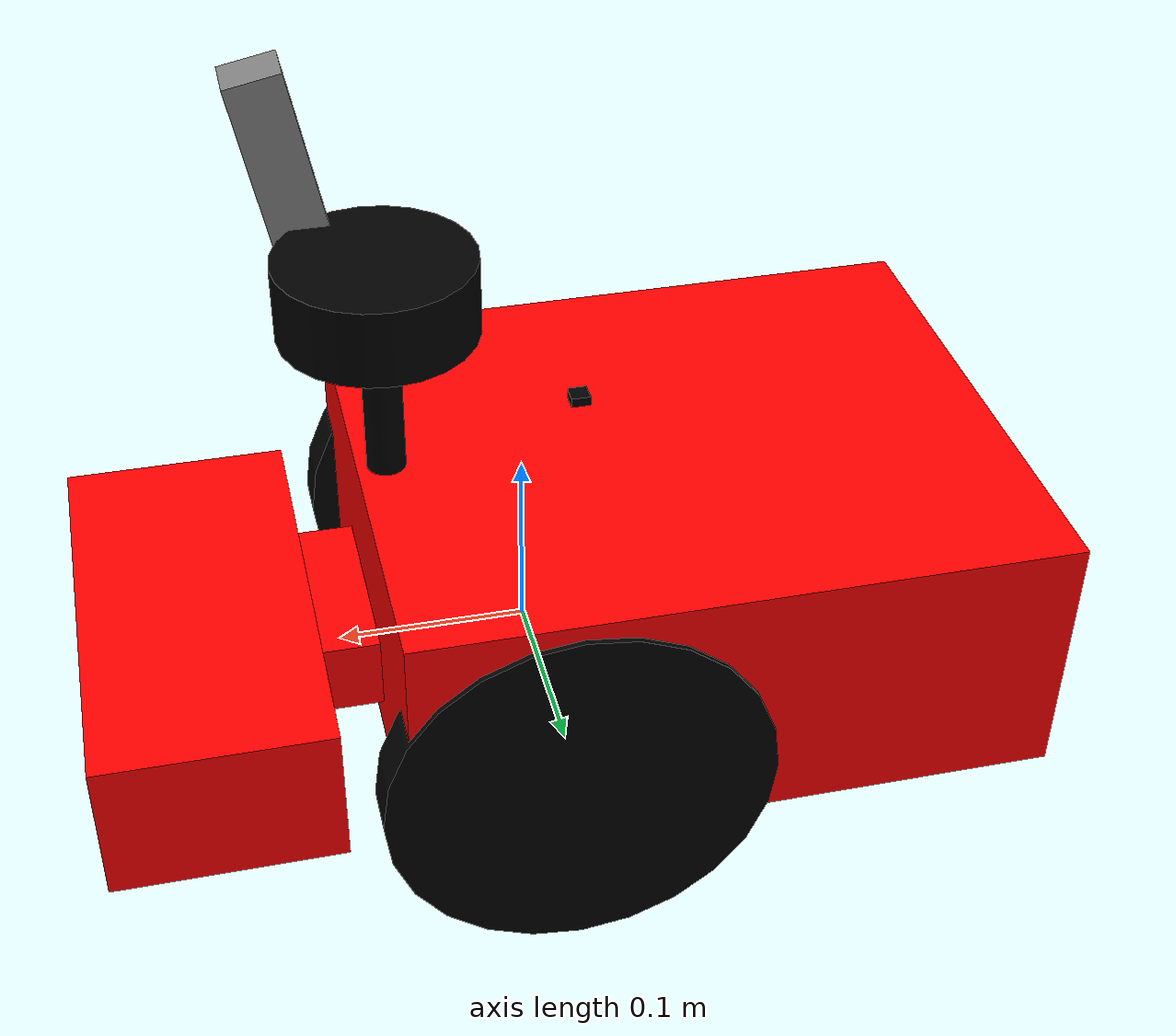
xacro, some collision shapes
<?xml version="1.0" ?>
<robot name='robot' xmlns:xacro="http://ros.org/wiki/xacro">

    <xacro:include filename="gazebo.urdf.xacro" />
    <xacro:include filename="lidar.urdf.xacro"/>
    <xacro:include filename="depth.urdf.xacro"/>
    <xacro:include filename="imu.urdf.xacro"/>

    <xacro:property name="chassis_length" value="0.335"/>
    <xacro:property name="chassis_width" value="0.28"/>
    <xacro:property name="chassis_height" value="0.138"/>
    <xacro:property name="wheel_radius" value="0.1"/>
    <xacro:property name="wheel_thickness" value="0.026"/>
    <xacro:property name="wheel_mass" value="0.2"/>
    <xacro:property name="wheel_offset_x" value="0.25"/>
    <xacro:property name="wheel_offset_y" value="0.13"/>
    <xacro:property name="wheel_offset_z" value="0.03"/>
    <xacro:property name="caster_wheel_radius" value="0.03"/>
    <xacro:property name="caster_wheel_mass" value="0.1"/>
    <xacro:property name="caster_wheel_offset_x" value="0.03"/>
    <xacro:property name="caster_wheel_offset_z" value="${wheel_offset_z - wheel_radius + caster_wheel_radius}"/>
    <xacro:property name="vacuum_length" value="0.12"/>
    <xacro:property name="vacuum_width" value="0.24"/>
    <xacro:property name="vacuum_height" value="0.08"/>
    <xacro:property name="vacuum_mass" value="0.5"/>
    <xacro:property name="mass" value="2.0"/>

    <material name="white">
        <color rgba="1 1 1 1" />
    </material>

    <material name="blue">
        <color rgba="0.2 0.2 1 1"/>
    </material>

    <material name="black">
        <color rgba="0 0 0 1"/>
    </material>

    <material name="red">
        <color rgba="1 0 0 1"/>
    </material>

    <link name="base_link">
    </link>

    <link name="base_footprint">
    </link>

    <joint name="base_footprint_joint" type="fixed">
        <parent link="base_link"/>
        <child link="base_footprint"/>
        <origin xyz="0 0 -0.138" rpy="0 0 0"/>
    </joint>

    <joint name="chassis_joint" type="fixed">
        <parent link="base_link"/>
        <child link="chassis"/>
        <origin xyz="${-wheel_offset_x} 0 ${-wheel_offset_z}"/>
    </joint>

    <link name='chassis'>
	    <inertial>
		<origin xyz="${chassis_length/2} 0 ${chassis_height/2}" rpy="0 0 0"/>
		<mass value="${mass}" />
		<inertia ixx="${(1/12) * mass * (chassis_width*chassis_width+chassis_height*chassis_height)}" ixy="0.0" ixz="0.0"
		         iyy="${(1/12) * mass * (chassis_length*chassis_length+chassis_height*chassis_height)}" iyz="0.0"
		         izz="${(1/12) * mass * (chassis_length*chassis_length+chassis_width*chassis_width)}" />
	    </inertial>
	    <visual>
		<origin xyz="${chassis_length/2} 0 ${chassis_height/2}"/>
		<geometry>
		    <box size="${chassis_length} ${chassis_width} ${chassis_height}"/>
		</geometry>
		<material name="red"/>
	    </visual>
	    <collision>
		<origin xyz="${chassis_length/2} 0 ${chassis_height/2}"/>
		<geometry>
		    <box size="${chassis_length} ${chassis_width} ${chassis_height}"/>
		</geometry>
	    </collision>
    </link>

    <gazebo reference="chassis">
        <material>Gazebo/Red</material>
    </gazebo>

    <joint name="connector_joint" type="fixed">
        <parent link="chassis"/>
        <child link="connector"/>
        <origin xyz="${chassis_length} 0 ${chassis_height/3}"/>
    </joint>

    <link name= "connector">
	<inertial>
	    <origin xyz="0.015 0 0" rpy="0 0 0"/>
	    <mass value="0.05" />
	    <inertia ixx="${(1/12) * 0.05 * (0.1*0.1+0.04*0.04)}" ixy="0.0" ixz="0.0"
		     iyy="${(1/12) * 0.05 * (0.03*0.03+0.04*0.04)}" iyz="0.0"
		     izz="${(1/12) * 0.05 * (0.03*0.03+ 0.01*0.01)}" />
	</inertial>
	    <visual>
		<origin xyz="0.015 0 0"/>
		<geometry>
		    <box size="0.03 0.1 0.04"/>
		</geometry>
		<material name="red"/>
	    </visual>
	    <collision>
		<origin xyz="0.015 0 0"/>
		<geometry>
		    <box size="0.03 0.1 0.04"/>
		</geometry>
	    </collision>
    </link>

    <gazebo reference="connector">
        <material>Gazebo/Red</material>
    </gazebo>

    <joint name="vacuum_joint" type="fixed">
        <parent link="connector"/>
        <child link="vacuum"/>
        <origin xyz="0.03 0 0.04"/>
    </joint>

    <link name= "vacuum">
	<inertial>
	    <origin xyz="${vacuum_length/2} 0 ${-vacuum_height*2/3}" rpy="0 0 0"/>
	    <mass value="${vacuum_mass}"/>
	    <inertia ixx="${(1/12)*vacuum_mass*(vacuum_width*vacuum_width+vacuum_height*vacuum_height)}" ixy="0.0" ixz="0.0"
		     iyy="${(1/12)*vacuum_mass*(vacuum_length*vacuum_length+vacuum_height*vacuum_height)}" iyz="0.0"
		     izz="${(1/12)*vacuum_mass*(vacuum_length*vacuum_length+vacuum_width*vacuum_width)}" />
	</inertial>
	    <visual>
		<origin xyz="${vacuum_length/2} 0 ${-vacuum_height*2/3}"/>
		<geometry>
		    <box size="${vacuum_length} ${vacuum_width} ${vacuum_height}"/>
		</geometry>
		<material name="red"/>
	    </visual>
	    <collision>
		<origin xyz="${vacuum_length/2} 0 ${-vacuum_height*2/3}"/>
		<geometry>
		    <box size="${vacuum_length} ${vacuum_width} ${vacuum_height}"/>
		</geometry>
	    </collision>
    </link>

    <gazebo reference="vacuum">
        <material>Gazebo/Red</material>
    </gazebo>

    <joint name="left_wheel_joint" type="continuous">
        <parent link="base_link"/>
        <child link="left_wheel"/>
        <origin xyz="0 ${wheel_offset_y} 0" rpy="-${pi/2} 0 0" />
        <axis xyz="0 0 1"/>
    </joint>

    <link name="left_wheel">
        <visual>
            <geometry>
                <cylinder radius="${wheel_radius}" length="${wheel_thickness}"/>
            </geometry>
            <material name="black"/>
        </visual>
        <collision>
            <geometry>
                <sphere radius="${wheel_radius}"/>
            </geometry>
        </collision>
        <inertial>
            <origin xyz="0 0 0" rpy="0 0 0"/>
            <mass value="${wheel_mass}" />
            <inertia ixx="${(1/12) * wheel_mass * (3*wheel_radius*wheel_radius + wheel_thickness*wheel_thickness)}" ixy="0.0" ixz="0.0"
                     iyy="${(1/12) * wheel_mass * (3*wheel_radius*wheel_radius + wheel_thickness*wheel_thickness)}" iyz="0.0"
                     izz="${(1/2) * wheel_mass * (wheel_radius*wheel_radius)}" />
        </inertial>
    </link>

    <gazebo reference="left_wheel">
        <material>Gazebo/Black</material>
    </gazebo>

    <joint name="right_wheel_joint" type="continuous">
        <parent link="base_link"/>
        <child link="right_wheel"/>
        <origin xyz="0 ${-wheel_offset_y} 0" rpy="${pi/2} 0 0" />
        <axis xyz="0 0 -1"/>
    </joint>

    <link name="right_wheel">
        <visual>
            <geometry>
                <cylinder radius="${wheel_radius}" length="${wheel_thickness}"/>
            </geometry>
            <material name="black"/>
        </visual>
        <collision>
            <geometry>
                <sphere radius="${wheel_radius}"/>
            </geometry>
        </collision>
        <inertial>
            <origin xyz="0 0 0" rpy="0 0 0"/>
            <mass value="${wheel_mass}" />
            <inertia ixx="${(1/12) * wheel_mass * (3*wheel_radius*wheel_radius + wheel_thickness*wheel_thickness)}" ixy="0.0" ixz="0.0"
                     iyy="${(1/12) * wheel_mass * (3*wheel_radius*wheel_radius + wheel_thickness*wheel_thickness)}" iyz="0.0"
                     izz="${(1/2) * wheel_mass * (wheel_radius*wheel_radius)}" />
        </inertial>
    </link>

    <gazebo reference="right_wheel">
        <material>Gazebo/Black</material>
    </gazebo>

    <joint name="caster_wheel_joint" type="fixed">
        <parent link="chassis"/>
        <child link="caster_wheel"/>
        <origin xyz="${caster_wheel_offset_x} 0 ${caster_wheel_offset_z}"/>
    </joint>

    <link name="caster_wheel">
        <visual>
            <geometry>
                <sphere radius="${caster_wheel_radius}"/>
            </geometry>
            <material name="black"/>
        </visual>
        <collision>
            <geometry>
                <sphere radius="${caster_wheel_radius}"/>
            </geometry>
        </collision>
        <inertial>
            <origin xyz="0 0 0" rpy="0 0 0"/>
            <mass value="${caster_wheel_mass}" />
            <inertia ixx="${(2/5) * caster_wheel_mass * (caster_wheel_radius*caster_wheel_radius)}" ixy="0.0" ixz="0.0"
                     iyy="${(2/5) * caster_wheel_mass * (caster_wheel_radius*caster_wheel_radius)}" iyz="0.0"
                     izz="${(2/5) * caster_wheel_mass * (caster_wheel_radius*caster_wheel_radius)}" />
        </inertial>
    </link>

    <gazebo reference="caster_wheel">
        <material>Gazebo/Black</material>
        <mu1 value="0.01"/>
        <mu2 value="0.01"/>
    </gazebo>

</robot>

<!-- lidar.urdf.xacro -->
<robot xmlns:xacro="http://www.ros.org/wiki/xacro">

    <joint name="laser_joint" type="fixed">
        <parent link="base_link"/>
        <child link="laser_frame"/>
        <origin xyz="0.1 0 0.212" rpy="0 0 0"/>
    </joint>

    <link name="laser_frame">
        <visual>
            <origin xyz="-0.03 0 0"/>
            <geometry>
                <cylinder radius="0.05" length="0.04"/>
            </geometry>
            <material name="black"/>
        </visual>
        <visual>
            <origin xyz="-0.03 0 -0.05"/>
            <geometry>
                <cylinder radius="0.01" length="0.1"/>
            </geometry>
            <material name="black"/>
        </visual>
        <collision>
            <geometry>
                <cylinder radius="0.05" length="0.04"/>
            </geometry>
        </collision>
        <inertial>
            <origin xyz="-0.03 0 0" rpy="0 0 -0.05"/>
            <mass value="0.1" />
            <inertia ixx="${(1/12) * 0.1 * (3*0.05*0.05 + 0.04*0.04)}" ixy="0.0" ixz="0.0"
                     iyy="${(1/12) * 0.1 * (3*0.05*0.05 + 0.04*0.04)}" iyz="0.0"
                     izz="${(1/2) * 0.1 * (0.05*0.05)}" />
        </inertial>
    </link>

    <gazebo reference="laser_frame">
        <material>Gazebo/Black</material>

        <sensor name='laser_sensor_frame' type='gpu_lidar'>"
            <gz_frame_id>robot/laser_frame</gz_frame_id>
            <pose> 0 0 0 0 0 0 </pose>
            <visualize>true</visualize>
            <always_on>true</always_on>
            <update_rate>10</update_rate>
            <ray>
                <scan>
                    <horizontal>
                        <samples>360</samples>
                        <min_angle>-3.14</min_angle>
                        <max_angle>3.14</max_angle>
                    </horizontal>
                </scan>
                <range>
                    <min>0.1</min>
                    <max>12</max>
                </range>
                <noise>
                    <type>gaussian</type>
                    <mean>0.0</mean>
                    <stddev>0.007</stddev>
                </noise>
            </ray>
        </sensor>
    </gazebo>
</robot>

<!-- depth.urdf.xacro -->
<robot xmlns:xacro="http://www.ros.org/wiki/xacro">

    <xacro:property name="M_PI" value="3.1415926535897931" />

    <joint name="depth_joint" type="fixed">
        <parent link="base_link"/>
        <child link="depth_frame"/>
        <origin xyz="0.1 0 0.25" rpy="0 0.2 0"/>
    </joint>

    <material name="aluminum">
      <color rgba="0.5 0.5 0.5 1"/>
    </material>

    <link name="depth_frame">
        <visual>
            <origin xyz="0.00465 -0.0475 0" rpy="${M_PI/2} 0 ${M_PI/2}"/>
            <geometry>
                <mesh filename="file://$(find rb_pkg)/urdf/d455.stl" scale="0.001 0.001 0.001"/>
                <!--box size="0.026 0.124 0.029"/-->
            </geometry>
            <material name="aluminum"/>
        </visual>
        <collision>
            <origin xyz="0.00465 -0.0475 0" rpy="${M_PI/2} 0 ${M_PI/2}"/>
            <geometry>
                <box size="0.026 0.124 0.029"/>
            </geometry>
        </collision>
        <inertial>
            <origin xyz="0 0 0" rpy="0 0 0"/>
            <mass value="0.116" />
            <inertia ixx="${(1/12) * 0.116 * (0.026*0.026+0.029*0.029)}" ixy="0.0" ixz="0.0"
                     iyy="${(1/12) * 0.116 * (0.124*0.124+0.029*0.029)}" iyz="0.0"
                     izz="${(1/12) * 0.116 * (0.124*0.124+0.026*0.026)}" />
        </inertial>
    </link>

    <gazebo reference="depth_frame">
        <sensor name='depth_sensor_frame' type='depth_camera'>"
            <gz_frame_id>robot/depth_frame</gz_frame_id>
            <pose> 0 0 0 0 0 0 </pose>
            <always_on>true</always_on>
            <update_rate>10</update_rate>
            <camera>
                <horizontal_fov>1.51843645</horizontal_fov>
                <image>
                    <width>848</width>
                    <height>480</height>
                    <format>R_FLOAT32</format>
                </image>
                <clip>
                    <near>0.1</near>
                    <far>10</far>
                </clip>
                <lens>
                    <intrinsics>
                    <fx>421.61578369140625</fx>
                    <fy>421.61578369140625</fy>
                    <cx>422.2854309082031</cx>
                    <cy>236.57237243652344</cy>
                    <s>0</s>
                    </intrinsics>
                </lens>
                <noise>
                    <type>gaussian</type>
                    <mean>0.0</mean>
                    <stddev>0.007</stddev>
                </noise>
            </camera>
        </sensor>
        <sensor name="color_sensor_frame" type="camera">
            <gz_frame_id>robot/depth_frame</gz_frame_id>
            <pose>0 0 0 0 0 0</pose>
            <update_rate>30</update_rate>
            <always_on>true</always_on>
            <camera>
                <horizontal_fov>1.20427718</horizontal_fov>
                <image>
                    <width>848</width>
                    <height>480</height>
                </image>
                <clip>
                    <near>0.1</near>
                    <far>50</far>
                </clip>
                <lens>
                    <intrinsics>
                    <fx>615.9603271484375</fx>
                    <fy>616.227294921875</fy>
                    <cx>419.83026123046875</cx>
                    <cy>245.1431427001953</cy>
                    <s>0</s>
                    </intrinsics>
                </lens>
            </camera>
        </sensor>
    </gazebo>
</robot>

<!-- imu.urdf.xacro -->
<robot xmlns:xacro="http://www.ros.org/wiki/xacro">

    <joint name="imu_joint" type="fixed">
        <parent link="base_link"/>
        <child link="imu_frame"/>
        <origin xyz="0 0 0.138" rpy="0 0 0"/>
    </joint>

    <link name="imu_frame">
        <visual>
            <origin xyz="-0.03 0 0"/>
            <geometry>
                <box size = "0.01 0.01 0.005"/>
            </geometry>
            <material name="black"/>
        </visual>
        <collision>
            <geometry>
                <box size = "0.01 0.01 0.005"/>
            </geometry>
        </collision>
        <inertial>
            <origin xyz="-0.03 0 0" rpy="0 0 -0.05"/>
            <mass value="0.01" />
            <inertia ixx="${(1/12) * 0.1 * (3*0.05*0.05 + 0.04*0.04)}" ixy="0.0" ixz="0.0"
                     iyy="${(1/12) * 0.1 * (3*0.05*0.05 + 0.04*0.04)}" iyz="0.0"
                     izz="${(1/2) * 0.1 * (0.05*0.05)}" />
        </inertial>
    </link>

    <gazebo reference="imu_frame">
        <material>Gazebo/Black</material>

        <sensor name="imu_sensor_frame" type="imu">"
            <gz_frame_id>robot/imu_frame</gz_frame_id>
            <always_on>1</always_on>
            <update_rate>1</update_rate>
            <visualize>true</visualize>
        </sensor>

    </gazebo>
</robot>
